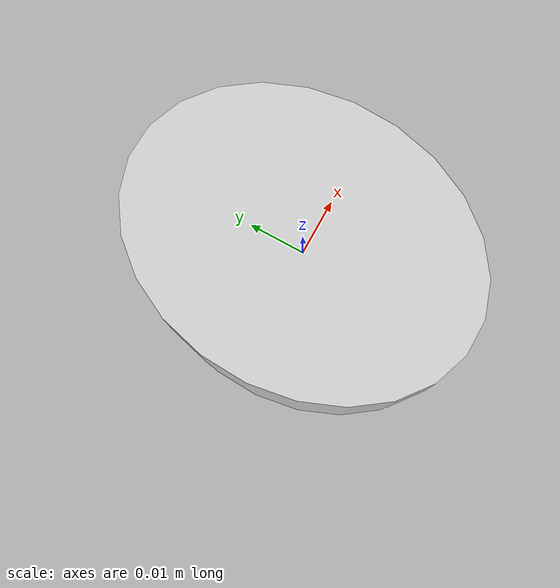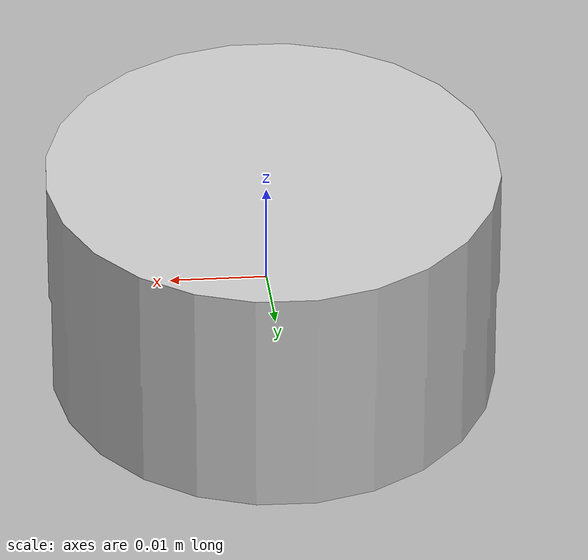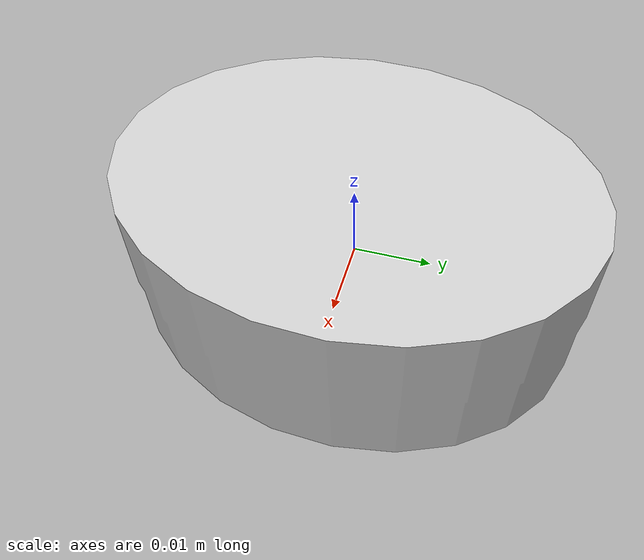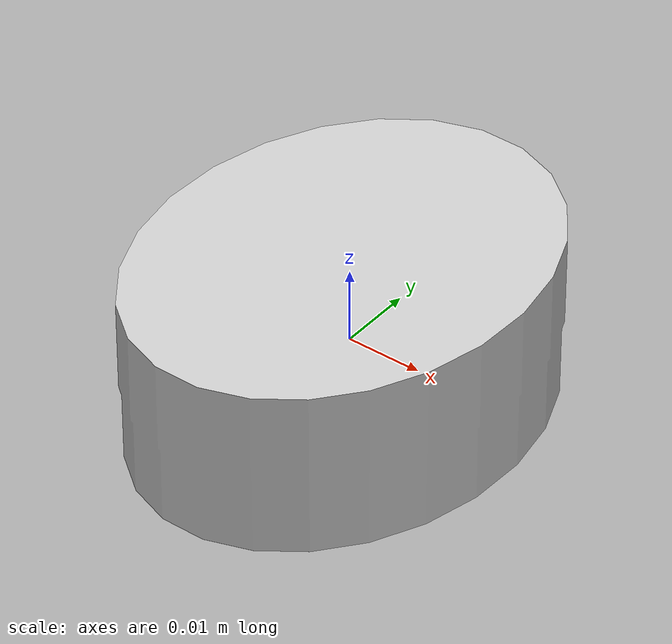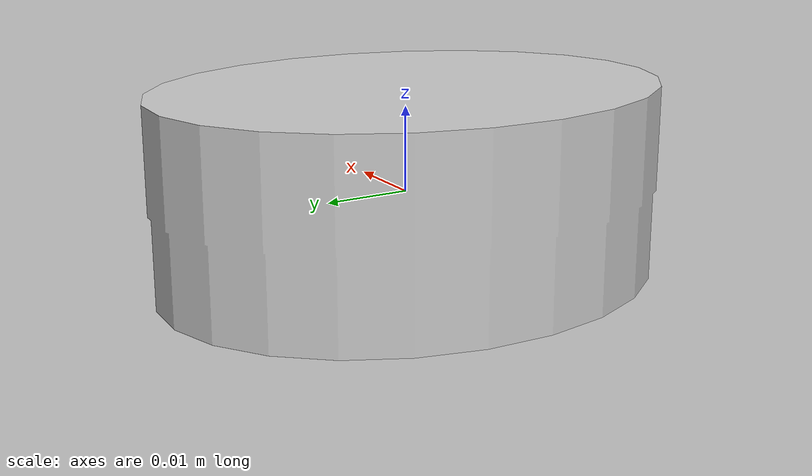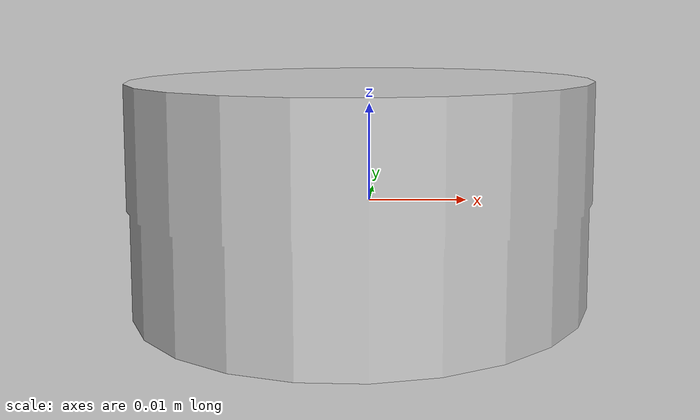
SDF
<?xml version="1.0" ?>
<sdf version="1.4">
  <model name="z_camembert">
    <link name="z_camembert_link">
      <inertial>
        <pose>-0.00 0.0 -0 0 0 0</pose>
        <mass>0.8</mass>
        <inertia>
          <ixx>0.001667</ixx>
	  <ixy>0.0</ixy>
	  <ixz>0.0</ixz>
	  <iyy>0.001667</iyy>
	  <iyz>0.0</iyz>
	  <izz>0.001667</izz>
	</inertia>
      </inertial>

      <visual name="z_camembert_visual">
        <pose>0 0 -0.008 0 0 0 </pose>
        <material>
	  <lighting>1</lighting>
	  <ambient>0.2 0.2 0.2 1</ambient>
	  <diffuse>0.8 0.8 0.8 1</diffuse>
	  <specular>0.2 0.2 0.2 1</specular>
	  <emissive>0.65 0.65 0.65 1</emissive>
          <script>
            <uri>model://z_camembert/materials/scripts</uri>
            <uri>model://z_camembert/materials/textures</uri>
            <name>Z_camembert/Image</name>
          </script>
        </material>
        <geometry>
          <mesh>
            <uri>model://z_camembert/meshes/z_camembert.dae</uri>
	    <scale>0.4 0.5 0.7</scale>
          </mesh>
        </geometry>
      </visual>

      <collision name="z_camembert_collision">
        <pose>-0.0 0.0 0 0.0 0.0 0.0</pose>
        <geometry>
          <box>
            <size>0.048 0.056 0.028</size>
          </box>
        </geometry>
        <max_contacts>10</max_contacts>
        <surface>
          <contact>
	    <ode>
	      <max_vel>0.000</max_vel>
            </ode>
          </contact>
          <bounce/>
          <friction>
            <torsional>
              <ode/>
            </torsional>
            <ode>
              <mu>1</mu>
              <mu2>1</mu2>
            </ode>
          </friction>
        </surface>
      </collision>
      <self_collide>0</self_collide>
      <kinematic>0</kinematic>
    </link>
  </model>
</sdf>
